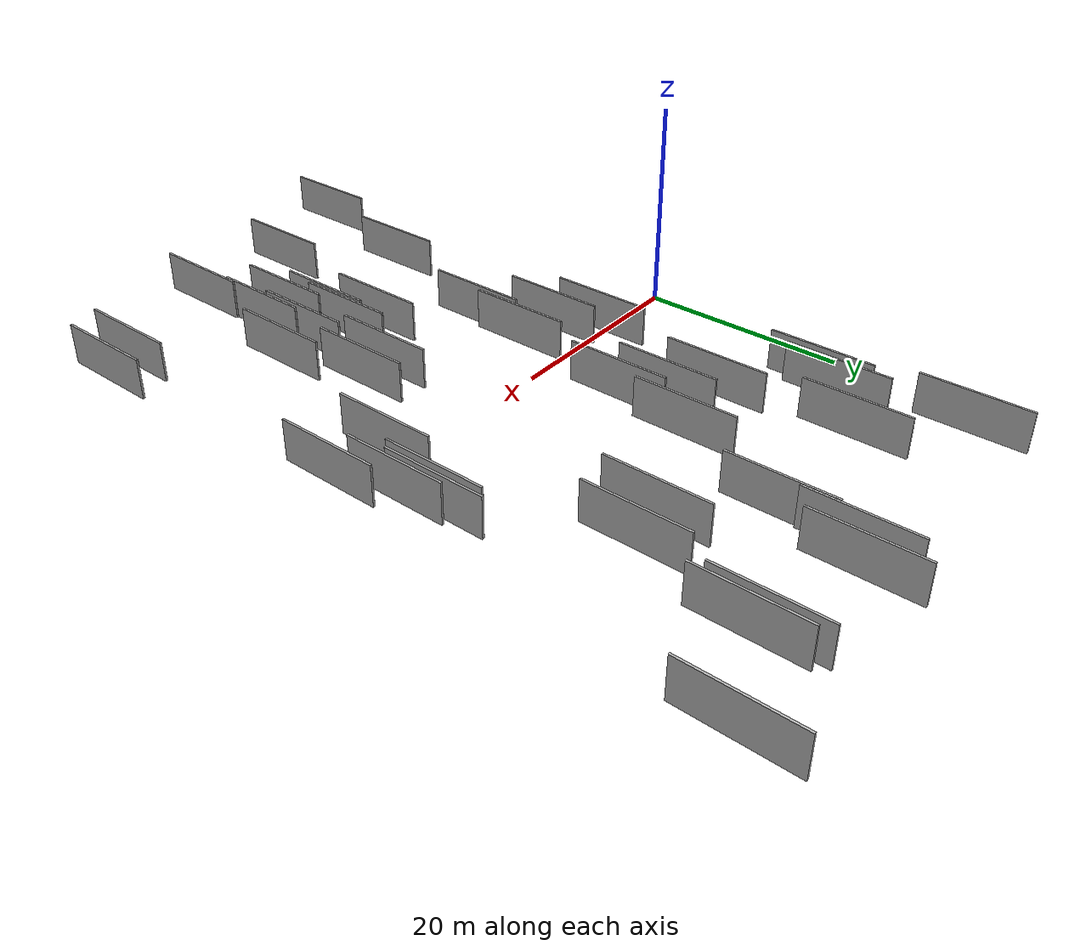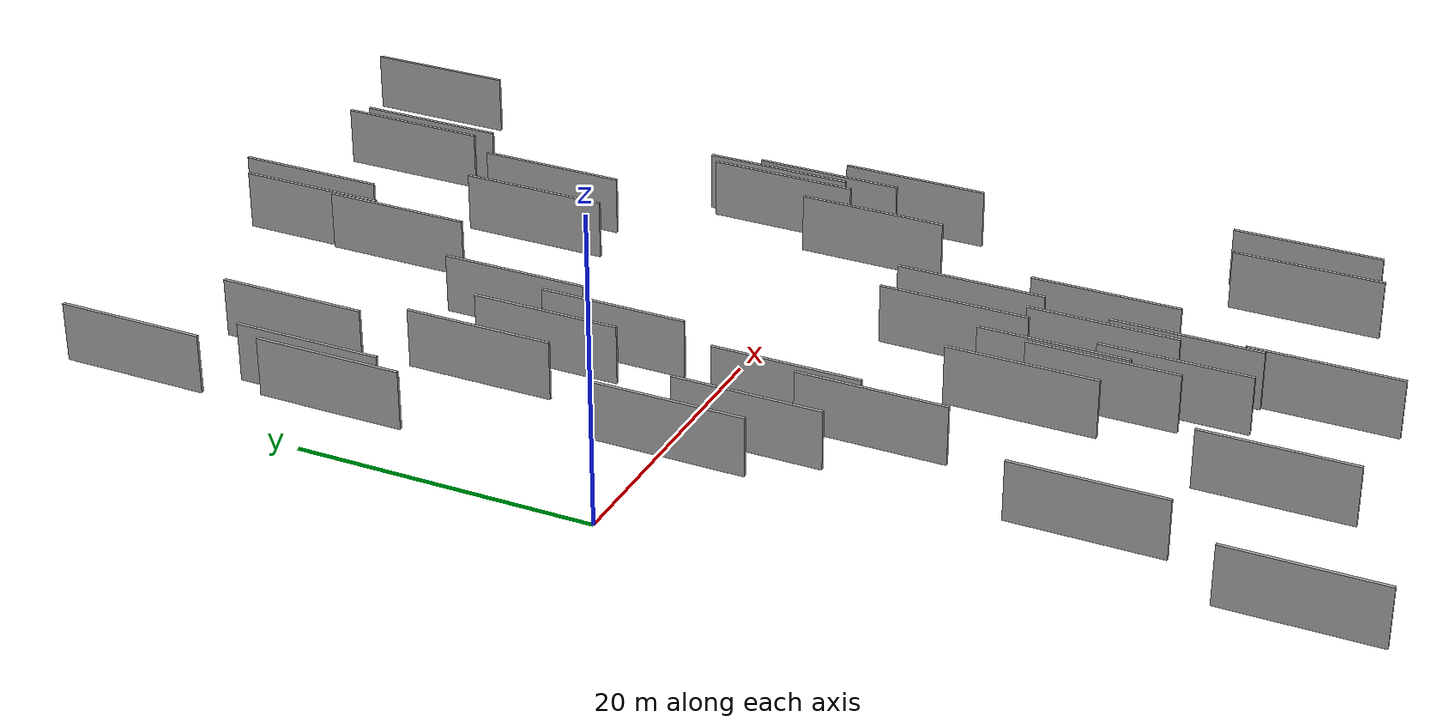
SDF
<sdf version="1.6">
 <world name="default">
  <scene>
   <sky><clouds><speed>12</speed></clouds></sky>
   <ambient>0.4 0.4 0.4 1</ambient>
   <background>0.7 0.7 0.7 1</background>
   <shadows>1</shadows>
  </scene>
  <gravity>0 0 -9.8066</gravity>
  <magnetic_field>6e-06 2.3e-05 -4.2e-05</magnetic_field>
  <physics default="0" name="default_physics" type="ode">
   <ode>
    <solver>
     <type>quick</type>
     <iters>10</iters>
     <sor>1.0</sor>
     <use_dynamic_moi_rescaling>0</use_dynamic_moi_rescaling>
    </solver>
    <constraints>
     <cfm>0</cfm>
     <erp>0.2</erp>
     <contact_max_correcting_vel>100</contact_max_correcting_vel>
     <contact_surface_layer>0.001</contact_surface_layer>
    </constraints>
   </ode>
   <max_step_size>0.004</max_step_size>
   <real_time_factor>1</real_time_factor>
   <real_time_update_rate>250</real_time_update_rate>
  </physics>
  <light name="sun" type="directional">
   <pose>0 0 10 0 0 0</pose>
   <diffuse>0.8 0.8 0.8 1</diffuse>
   <specular>0.2 0.2 0.2 1</specular>
   <attenuation>
    <range>1000</range>
    <constant>0.9</constant>
    <linear>0.01</linear>
    <quadratic>0.001</quadratic>
   </attenuation>
   <direction>-0.5 0.1 -0.9</direction>
  </light>
  <model name="grey_wall_1">
   <static>1</static>
   <pose>17.6452 7.7032 0.0 0.000000 0.000000 1.570796</pose>
   <link name="link">
    <pose>0 0 2.00 0 0 0</pose>
    <collision name="collision"><geometry><box><size>10.00 0.2 4.00</size></box></geometry></collision>
    <visual name="visual">
     <cast_shadows>0</cast_shadows>
     <geometry><box><size>10.00 0.2 4.00</size></box></geometry>
     <material>
      <script>
       <uri>model://HANNAS_wall/materials/scripts</uri>
       <uri>model://HANNAS_wall/materials/textures</uri>
       <name>vrc/HANNAS_wall</name>
      </script>
     </material>
    </visual>
   </link>
  </model>
  <model name="grey_wall_2">
   <static>1</static>
   <pose>29.3369 -34.7402 0.0 0.000000 0.000000 1.570796</pose>
   <link name="link">
    <pose>0 0 2.00 0 0 0</pose>
    <collision name="collision"><geometry><box><size>10.00 0.2 4.00</size></box></geometry></collision>
    <visual name="visual">
     <cast_shadows>0</cast_shadows>
     <geometry><box><size>10.00 0.2 4.00</size></box></geometry>
     <material>
      <script>
       <uri>model://HANNAS_wall/materials/scripts</uri>
       <uri>model://HANNAS_wall/materials/textures</uri>
       <name>vrc/HANNAS_wall</name>
      </script>
     </material>
    </visual>
   </link>
  </model>
  <model name="grey_wall_3">
   <static>1</static>
   <pose>10.5927 -26.1240 0.0 0.000000 0.000000 1.570796</pose>
   <link name="link">
    <pose>0 0 2.00 0 0 0</pose>
    <collision name="collision"><geometry><box><size>10.00 0.2 4.00</size></box></geometry></collision>
    <visual name="visual">
     <cast_shadows>0</cast_shadows>
     <geometry><box><size>10.00 0.2 4.00</size></box></geometry>
     <material>
      <script>
       <uri>model://HANNAS_wall/materials/scripts</uri>
       <uri>model://HANNAS_wall/materials/textures</uri>
       <name>vrc/HANNAS_wall</name>
      </script>
     </material>
    </visual>
   </link>
  </model>
  <model name="grey_wall_4">
   <static>1</static>
   <pose>39.8284 6.3631 0.0 0.000000 0.000000 1.570796</pose>
   <link name="link">
    <pose>0 0 2.00 0 0 0</pose>
    <collision name="collision"><geometry><box><size>10.00 0.2 4.00</size></box></geometry></collision>
    <visual name="visual">
     <cast_shadows>0</cast_shadows>
     <geometry><box><size>10.00 0.2 4.00</size></box></geometry>
     <material>
      <script>
       <uri>model://HANNAS_wall/materials/scripts</uri>
       <uri>model://HANNAS_wall/materials/textures</uri>
       <name>vrc/HANNAS_wall</name>
      </script>
     </material>
    </visual>
   </link>
  </model>
  <model name="grey_wall_5">
   <static>1</static>
   <pose>11.6787 14.0342 0.0 0.000000 0.000000 1.570796</pose>
   <link name="link">
    <pose>0 0 2.00 0 0 0</pose>
    <collision name="collision"><geometry><box><size>10.00 0.2 4.00</size></box></geometry></collision>
    <visual name="visual">
     <cast_shadows>0</cast_shadows>
     <geometry><box><size>10.00 0.2 4.00</size></box></geometry>
     <material>
      <script>
       <uri>model://HANNAS_wall/materials/scripts</uri>
       <uri>model://HANNAS_wall/materials/textures</uri>
       <name>vrc/HANNAS_wall</name>
      </script>
     </material>
    </visual>
   </link>
  </model>
  <model name="grey_wall_6">
   <static>1</static>
   <pose>7.2772 -39.6710 0.0 0.000000 0.000000 1.570796</pose>
   <link name="link">
    <pose>0 0 2.00 0 0 0</pose>
    <collision name="collision"><geometry><box><size>10.00 0.2 4.00</size></box></geometry></collision>
    <visual name="visual">
     <cast_shadows>0</cast_shadows>
     <geometry><box><size>10.00 0.2 4.00</size></box></geometry>
     <material>
      <script>
       <uri>model://HANNAS_wall/materials/scripts</uri>
       <uri>model://HANNAS_wall/materials/textures</uri>
       <name>vrc/HANNAS_wall</name>
      </script>
     </material>
    </visual>
   </link>
  </model>
  <model name="grey_wall_7">
   <static>1</static>
   <pose>27.1532 -11.4824 0.0 0.000000 0.000000 1.570796</pose>
   <link name="link">
    <pose>0 0 2.00 0 0 0</pose>
    <collision name="collision"><geometry><box><size>10.00 0.2 4.00</size></box></geometry></collision>
    <visual name="visual">
     <cast_shadows>0</cast_shadows>
     <geometry><box><size>10.00 0.2 4.00</size></box></geometry>
     <material>
      <script>
       <uri>model://HANNAS_wall/materials/scripts</uri>
       <uri>model://HANNAS_wall/materials/textures</uri>
       <name>vrc/HANNAS_wall</name>
      </script>
     </material>
    </visual>
   </link>
  </model>
  <model name="grey_wall_8">
   <static>1</static>
   <pose>21.5751 -18.0742 0.0 0.000000 0.000000 1.570796</pose>
   <link name="link">
    <pose>0 0 2.00 0 0 0</pose>
    <collision name="collision"><geometry><box><size>10.00 0.2 4.00</size></box></geometry></collision>
    <visual name="visual">
     <cast_shadows>0</cast_shadows>
     <geometry><box><size>10.00 0.2 4.00</size></box></geometry>
     <material>
      <script>
       <uri>model://HANNAS_wall/materials/scripts</uri>
       <uri>model://HANNAS_wall/materials/textures</uri>
       <name>vrc/HANNAS_wall</name>
      </script>
     </material>
    </visual>
   </link>
  </model>
  <model name="grey_wall_9">
   <static>1</static>
   <pose>24.7497 -18.9632 0.0 0.000000 0.000000 1.570796</pose>
   <link name="link">
    <pose>0 0 2.00 0 0 0</pose>
    <collision name="collision"><geometry><box><size>10.00 0.2 4.00</size></box></geometry></collision>
    <visual name="visual">
     <cast_shadows>0</cast_shadows>
     <geometry><box><size>10.00 0.2 4.00</size></box></geometry>
     <material>
      <script>
       <uri>model://HANNAS_wall/materials/scripts</uri>
       <uri>model://HANNAS_wall/materials/textures</uri>
       <name>vrc/HANNAS_wall</name>
      </script>
     </material>
    </visual>
   </link>
  </model>
  <model name="grey_wall_10">
   <static>1</static>
   <pose>3.2504 34.0008 0.0 0.000000 0.000000 1.570796</pose>
   <link name="link">
    <pose>0 0 2.00 0 0 0</pose>
    <collision name="collision"><geometry><box><size>10.00 0.2 4.00</size></box></geometry></collision>
    <visual name="visual">
     <cast_shadows>0</cast_shadows>
     <geometry><box><size>10.00 0.2 4.00</size></box></geometry>
     <material>
      <script>
       <uri>model://HANNAS_wall/materials/scripts</uri>
       <uri>model://HANNAS_wall/materials/textures</uri>
       <name>vrc/HANNAS_wall</name>
      </script>
     </material>
    </visual>
   </link>
  </model>
  <model name="grey_wall_11">
   <static>1</static>
   <pose>24.2632 -22.3150 0.0 0.000000 0.000000 1.570796</pose>
   <link name="link">
    <pose>0 0 2.00 0 0 0</pose>
    <collision name="collision"><geometry><box><size>10.00 0.2 4.00</size></box></geometry></collision>
    <visual name="visual">
     <cast_shadows>0</cast_shadows>
     <geometry><box><size>10.00 0.2 4.00</size></box></geometry>
     <material>
      <script>
       <uri>model://HANNAS_wall/materials/scripts</uri>
       <uri>model://HANNAS_wall/materials/textures</uri>
       <name>vrc/HANNAS_wall</name>
      </script>
     </material>
    </visual>
   </link>
  </model>
  <model name="grey_wall_12">
   <static>1</static>
   <pose>41.0573 -30.3732 0.0 0.000000 0.000000 1.570796</pose>
   <link name="link">
    <pose>0 0 2.00 0 0 0</pose>
    <collision name="collision"><geometry><box><size>10.00 0.2 4.00</size></box></geometry></collision>
    <visual name="visual">
     <cast_shadows>0</cast_shadows>
     <geometry><box><size>10.00 0.2 4.00</size></box></geometry>
     <material>
      <script>
       <uri>model://HANNAS_wall/materials/scripts</uri>
       <uri>model://HANNAS_wall/materials/textures</uri>
       <name>vrc/HANNAS_wall</name>
      </script>
     </material>
    </visual>
   </link>
  </model>
  <model name="grey_wall_13">
   <static>1</static>
   <pose>25.8757 -26.3739 0.0 0.000000 0.000000 1.570796</pose>
   <link name="link">
    <pose>0 0 2.00 0 0 0</pose>
    <collision name="collision"><geometry><box><size>10.00 0.2 4.00</size></box></geometry></collision>
    <visual name="visual">
     <cast_shadows>0</cast_shadows>
     <geometry><box><size>10.00 0.2 4.00</size></box></geometry>
     <material>
      <script>
       <uri>model://HANNAS_wall/materials/scripts</uri>
       <uri>model://HANNAS_wall/materials/textures</uri>
       <name>vrc/HANNAS_wall</name>
      </script>
     </material>
    </visual>
   </link>
  </model>
  <model name="grey_wall_14">
   <static>1</static>
   <pose>44.5203 35.6101 0.0 0.000000 0.000000 1.570796</pose>
   <link name="link">
    <pose>0 0 2.00 0 0 0</pose>
    <collision name="collision"><geometry><box><size>10.00 0.2 4.00</size></box></geometry></collision>
    <visual name="visual">
     <cast_shadows>0</cast_shadows>
     <geometry><box><size>10.00 0.2 4.00</size></box></geometry>
     <material>
      <script>
       <uri>model://HANNAS_wall/materials/scripts</uri>
       <uri>model://HANNAS_wall/materials/textures</uri>
       <name>vrc/HANNAS_wall</name>
      </script>
     </material>
    </visual>
   </link>
  </model>
  <model name="grey_wall_15">
   <static>1</static>
   <pose>33.5682 20.5417 0.0 0.000000 0.000000 1.570796</pose>
   <link name="link">
    <pose>0 0 2.00 0 0 0</pose>
    <collision name="collision"><geometry><box><size>10.00 0.2 4.00</size></box></geometry></collision>
    <visual name="visual">
     <cast_shadows>0</cast_shadows>
     <geometry><box><size>10.00 0.2 4.00</size></box></geometry>
     <material>
      <script>
       <uri>model://HANNAS_wall/materials/scripts</uri>
       <uri>model://HANNAS_wall/materials/textures</uri>
       <name>vrc/HANNAS_wall</name>
      </script>
     </material>
    </visual>
   </link>
  </model>
  <model name="grey_wall_16">
   <static>1</static>
   <pose>23.6345 26.9207 0.0 0.000000 0.000000 1.570796</pose>
   <link name="link">
    <pose>0 0 2.00 0 0 0</pose>
    <collision name="collision"><geometry><box><size>10.00 0.2 4.00</size></box></geometry></collision>
    <visual name="visual">
     <cast_shadows>0</cast_shadows>
     <geometry><box><size>10.00 0.2 4.00</size></box></geometry>
     <material>
      <script>
       <uri>model://HANNAS_wall/materials/scripts</uri>
       <uri>model://HANNAS_wall/materials/textures</uri>
       <name>vrc/HANNAS_wall</name>
      </script>
     </material>
    </visual>
   </link>
  </model>
  <model name="grey_wall_17">
   <static>1</static>
   <pose>38.9944 5.6260 0.0 0.000000 0.000000 1.570796</pose>
   <link name="link">
    <pose>0 0 2.00 0 0 0</pose>
    <collision name="collision"><geometry><box><size>10.00 0.2 4.00</size></box></geometry></collision>
    <visual name="visual">
     <cast_shadows>0</cast_shadows>
     <geometry><box><size>10.00 0.2 4.00</size></box></geometry>
     <material>
      <script>
       <uri>model://HANNAS_wall/materials/scripts</uri>
       <uri>model://HANNAS_wall/materials/textures</uri>
       <name>vrc/HANNAS_wall</name>
      </script>
     </material>
    </visual>
   </link>
  </model>
  <model name="grey_wall_18">
   <static>1</static>
   <pose>36.6726 -1.9402 0.0 0.000000 0.000000 1.570796</pose>
   <link name="link">
    <pose>0 0 2.00 0 0 0</pose>
    <collision name="collision"><geometry><box><size>10.00 0.2 4.00</size></box></geometry></collision>
    <visual name="visual">
     <cast_shadows>0</cast_shadows>
     <geometry><box><size>10.00 0.2 4.00</size></box></geometry>
     <material>
      <script>
       <uri>model://HANNAS_wall/materials/scripts</uri>
       <uri>model://HANNAS_wall/materials/textures</uri>
       <name>vrc/HANNAS_wall</name>
      </script>
     </material>
    </visual>
   </link>
  </model>
  <model name="grey_wall_19">
   <static>1</static>
   <pose>36.4396 31.6796 0.0 0.000000 0.000000 1.570796</pose>
   <link name="link">
    <pose>0 0 2.00 0 0 0</pose>
    <collision name="collision"><geometry><box><size>10.00 0.2 4.00</size></box></geometry></collision>
    <visual name="visual">
     <cast_shadows>0</cast_shadows>
     <geometry><box><size>10.00 0.2 4.00</size></box></geometry>
     <material>
      <script>
       <uri>model://HANNAS_wall/materials/scripts</uri>
       <uri>model://HANNAS_wall/materials/textures</uri>
       <name>vrc/HANNAS_wall</name>
      </script>
     </material>
    </visual>
   </link>
  </model>
  <model name="grey_wall_20">
   <static>1</static>
   <pose>44.1261 -29.4959 0.0 0.000000 0.000000 1.570796</pose>
   <link name="link">
    <pose>0 0 2.00 0 0 0</pose>
    <collision name="collision"><geometry><box><size>10.00 0.2 4.00</size></box></geometry></collision>
    <visual name="visual">
     <cast_shadows>0</cast_shadows>
     <geometry><box><size>10.00 0.2 4.00</size></box></geometry>
     <material>
      <script>
       <uri>model://HANNAS_wall/materials/scripts</uri>
       <uri>model://HANNAS_wall/materials/textures</uri>
       <name>vrc/HANNAS_wall</name>
      </script>
     </material>
    </visual>
   </link>
  </model>
  <model name="grey_wall_21">
   <static>1</static>
   <pose>29.9358 19.9670 0.0 0.000000 0.000000 1.570796</pose>
   <link name="link">
    <pose>0 0 2.00 0 0 0</pose>
    <collision name="collision"><geometry><box><size>10.00 0.2 4.00</size></box></geometry></collision>
    <visual name="visual">
     <cast_shadows>0</cast_shadows>
     <geometry><box><size>10.00 0.2 4.00</size></box></geometry>
     <material>
      <script>
       <uri>model://HANNAS_wall/materials/scripts</uri>
       <uri>model://HANNAS_wall/materials/textures</uri>
       <name>vrc/HANNAS_wall</name>
      </script>
     </material>
    </visual>
   </link>
  </model>
  <model name="grey_wall_22">
   <static>1</static>
   <pose>11.2078 -4.4995 0.0 0.000000 0.000000 1.570796</pose>
   <link name="link">
    <pose>0 0 2.00 0 0 0</pose>
    <collision name="collision"><geometry><box><size>10.00 0.2 4.00</size></box></geometry></collision>
    <visual name="visual">
     <cast_shadows>0</cast_shadows>
     <geometry><box><size>10.00 0.2 4.00</size></box></geometry>
     <material>
      <script>
       <uri>model://HANNAS_wall/materials/scripts</uri>
       <uri>model://HANNAS_wall/materials/textures</uri>
       <name>vrc/HANNAS_wall</name>
      </script>
     </material>
    </visual>
   </link>
  </model>
  <model name="grey_wall_23">
   <static>1</static>
   <pose>15.5559 -5.1183 0.0 0.000000 0.000000 1.570796</pose>
   <link name="link">
    <pose>0 0 2.00 0 0 0</pose>
    <collision name="collision"><geometry><box><size>10.00 0.2 4.00</size></box></geometry></collision>
    <visual name="visual">
     <cast_shadows>0</cast_shadows>
     <geometry><box><size>10.00 0.2 4.00</size></box></geometry>
     <material>
      <script>
       <uri>model://HANNAS_wall/materials/scripts</uri>
       <uri>model://HANNAS_wall/materials/textures</uri>
       <name>vrc/HANNAS_wall</name>
      </script>
     </material>
    </visual>
   </link>
  </model>
  <model name="grey_wall_24">
   <static>1</static>
   <pose>32.2377 -19.7604 0.0 0.000000 0.000000 1.570796</pose>
   <link name="link">
    <pose>0 0 2.00 0 0 0</pose>
    <collision name="collision"><geometry><box><size>10.00 0.2 4.00</size></box></geometry></collision>
    <visual name="visual">
     <cast_shadows>0</cast_shadows>
     <geometry><box><size>10.00 0.2 4.00</size></box></geometry>
     <material>
      <script>
       <uri>model://HANNAS_wall/materials/scripts</uri>
       <uri>model://HANNAS_wall/materials/textures</uri>
       <name>vrc/HANNAS_wall</name>
      </script>
     </material>
    </visual>
   </link>
  </model>
  <model name="grey_wall_25">
   <static>1</static>
   <pose>40.5021 2.8963 0.0 0.000000 0.000000 1.570796</pose>
   <link name="link">
    <pose>0 0 2.00 0 0 0</pose>
    <collision name="collision"><geometry><box><size>10.00 0.2 4.00</size></box></geometry></collision>
    <visual name="visual">
     <cast_shadows>0</cast_shadows>
     <geometry><box><size>10.00 0.2 4.00</size></box></geometry>
     <material>
      <script>
       <uri>model://HANNAS_wall/materials/scripts</uri>
       <uri>model://HANNAS_wall/materials/textures</uri>
       <name>vrc/HANNAS_wall</name>
      </script>
     </material>
    </visual>
   </link>
  </model>
  <model name="grey_wall_26">
   <static>1</static>
   <pose>42.2327 -2.7268 0.0 0.000000 0.000000 1.570796</pose>
   <link name="link">
    <pose>0 0 2.00 0 0 0</pose>
    <collision name="collision"><geometry><box><size>10.00 0.2 4.00</size></box></geometry></collision>
    <visual name="visual">
     <cast_shadows>0</cast_shadows>
     <geometry><box><size>10.00 0.2 4.00</size></box></geometry>
     <material>
      <script>
       <uri>model://HANNAS_wall/materials/scripts</uri>
       <uri>model://HANNAS_wall/materials/textures</uri>
       <name>vrc/HANNAS_wall</name>
      </script>
     </material>
    </visual>
   </link>
  </model>
  <model name="grey_wall_27">
   <static>1</static>
   <pose>19.0448 15.4791 0.0 0.000000 0.000000 1.570796</pose>
   <link name="link">
    <pose>0 0 2.00 0 0 0</pose>
    <collision name="collision"><geometry><box><size>10.00 0.2 4.00</size></box></geometry></collision>
    <visual name="visual">
     <cast_shadows>0</cast_shadows>
     <geometry><box><size>10.00 0.2 4.00</size></box></geometry>
     <material>
      <script>
       <uri>model://HANNAS_wall/materials/scripts</uri>
       <uri>model://HANNAS_wall/materials/textures</uri>
       <name>vrc/HANNAS_wall</name>
      </script>
     </material>
    </visual>
   </link>
  </model>
  <model name="grey_wall_28">
   <static>1</static>
   <pose>35.5474 32.6762 0.0 0.000000 0.000000 1.570796</pose>
   <link name="link">
    <pose>0 0 2.00 0 0 0</pose>
    <collision name="collision"><geometry><box><size>10.00 0.2 4.00</size></box></geometry></collision>
    <visual name="visual">
     <cast_shadows>0</cast_shadows>
     <geometry><box><size>10.00 0.2 4.00</size></box></geometry>
     <material>
      <script>
       <uri>model://HANNAS_wall/materials/scripts</uri>
       <uri>model://HANNAS_wall/materials/textures</uri>
       <name>vrc/HANNAS_wall</name>
      </script>
     </material>
    </visual>
   </link>
  </model>
  <model name="grey_wall_29">
   <static>1</static>
   <pose>5.6789 22.6766 0.0 0.000000 0.000000 1.570796</pose>
   <link name="link">
    <pose>0 0 2.00 0 0 0</pose>
    <collision name="collision"><geometry><box><size>10.00 0.2 4.00</size></box></geometry></collision>
    <visual name="visual">
     <cast_shadows>0</cast_shadows>
     <geometry><box><size>10.00 0.2 4.00</size></box></geometry>
     <material>
      <script>
       <uri>model://HANNAS_wall/materials/scripts</uri>
       <uri>model://HANNAS_wall/materials/textures</uri>
       <name>vrc/HANNAS_wall</name>
      </script>
     </material>
    </visual>
   </link>
  </model>
  <model name="grey_wall_30">
   <static>1</static>
   <pose>10.2184 26.6279 0.0 0.000000 0.000000 1.570796</pose>
   <link name="link">
    <pose>0 0 2.00 0 0 0</pose>
    <collision name="collision"><geometry><box><size>10.00 0.2 4.00</size></box></geometry></collision>
    <visual name="visual">
     <cast_shadows>0</cast_shadows>
     <geometry><box><size>10.00 0.2 4.00</size></box></geometry>
     <material>
      <script>
       <uri>model://HANNAS_wall/materials/scripts</uri>
       <uri>model://HANNAS_wall/materials/textures</uri>
       <name>vrc/HANNAS_wall</name>
      </script>
     </material>
    </visual>
   </link>
  </model>
  <model name="grey_wall_31">
   <static>1</static>
   <pose>8.5668 -0.6362 0.0 0.000000 0.000000 1.570796</pose>
   <link name="link">
    <pose>0 0 2.00 0 0 0</pose>
    <collision name="collision"><geometry><box><size>10.00 0.2 4.00</size></box></geometry></collision>
    <visual name="visual">
     <cast_shadows>0</cast_shadows>
     <geometry><box><size>10.00 0.2 4.00</size></box></geometry>
     <material>
      <script>
       <uri>model://HANNAS_wall/materials/scripts</uri>
       <uri>model://HANNAS_wall/materials/textures</uri>
       <name>vrc/HANNAS_wall</name>
      </script>
     </material>
    </visual>
   </link>
  </model>
  <model name="grey_wall_32">
   <static>1</static>
   <pose>14.8521 -11.0126 0.0 0.000000 0.000000 1.570796</pose>
   <link name="link">
    <pose>0 0 2.00 0 0 0</pose>
    <collision name="collision"><geometry><box><size>10.00 0.2 4.00</size></box></geometry></collision>
    <visual name="visual">
     <cast_shadows>0</cast_shadows>
     <geometry><box><size>10.00 0.2 4.00</size></box></geometry>
     <material>
      <script>
       <uri>model://HANNAS_wall/materials/scripts</uri>
       <uri>model://HANNAS_wall/materials/textures</uri>
       <name>vrc/HANNAS_wall</name>
      </script>
     </material>
    </visual>
   </link>
  </model>
  <model name="grey_wall_33">
   <static>1</static>
   <pose>25.9767 35.0566 0.0 0.000000 0.000000 1.570796</pose>
   <link name="link">
    <pose>0 0 2.00 0 0 0</pose>
    <collision name="collision"><geometry><box><size>10.00 0.2 4.00</size></box></geometry></collision>
    <visual name="visual">
     <cast_shadows>0</cast_shadows>
     <geometry><box><size>10.00 0.2 4.00</size></box></geometry>
     <material>
      <script>
       <uri>model://HANNAS_wall/materials/scripts</uri>
       <uri>model://HANNAS_wall/materials/textures</uri>
       <name>vrc/HANNAS_wall</name>
      </script>
     </material>
    </visual>
   </link>
  </model>
  <model name="grey_wall_34">
   <static>1</static>
   <pose>15.1824 11.1846 0.0 0.000000 0.000000 1.570796</pose>
   <link name="link">
    <pose>0 0 2.00 0 0 0</pose>
    <collision name="collision"><geometry><box><size>10.00 0.2 4.00</size></box></geometry></collision>
    <visual name="visual">
     <cast_shadows>0</cast_shadows>
     <geometry><box><size>10.00 0.2 4.00</size></box></geometry>
     <material>
      <script>
       <uri>model://HANNAS_wall/materials/scripts</uri>
       <uri>model://HANNAS_wall/materials/textures</uri>
       <name>vrc/HANNAS_wall</name>
      </script>
     </material>
    </visual>
   </link>
  </model>
  <model name="grey_wall_35">
   <static>1</static>
   <pose>4.6229 20.5758 0.0 0.000000 0.000000 1.570796</pose>
   <link name="link">
    <pose>0 0 2.00 0 0 0</pose>
    <collision name="collision"><geometry><box><size>10.00 0.2 4.00</size></box></geometry></collision>
    <visual name="visual">
     <cast_shadows>0</cast_shadows>
     <geometry><box><size>10.00 0.2 4.00</size></box></geometry>
     <material>
      <script>
       <uri>model://HANNAS_wall/materials/scripts</uri>
       <uri>model://HANNAS_wall/materials/textures</uri>
       <name>vrc/HANNAS_wall</name>
      </script>
     </material>
    </visual>
   </link>
  </model>
  <model name="grey_wall_36">
   <static>1</static>
   <pose>28.4576 -20.8748 0.0 0.000000 0.000000 1.570796</pose>
   <link name="link">
    <pose>0 0 2.00 0 0 0</pose>
    <collision name="collision"><geometry><box><size>10.00 0.2 4.00</size></box></geometry></collision>
    <visual name="visual">
     <cast_shadows>0</cast_shadows>
     <geometry><box><size>10.00 0.2 4.00</size></box></geometry>
     <material>
      <script>
       <uri>model://HANNAS_wall/materials/scripts</uri>
       <uri>model://HANNAS_wall/materials/textures</uri>
       <name>vrc/HANNAS_wall</name>
      </script>
     </material>
    </visual>
   </link>
  </model>
  <model name="grey_wall_37">
   <static>1</static>
   <pose>23.8901 33.6496 0.0 0.000000 0.000000 1.570796</pose>
   <link name="link">
    <pose>0 0 2.00 0 0 0</pose>
    <collision name="collision"><geometry><box><size>10.00 0.2 4.00</size></box></geometry></collision>
    <visual name="visual">
     <cast_shadows>0</cast_shadows>
     <geometry><box><size>10.00 0.2 4.00</size></box></geometry>
     <material>
      <script>
       <uri>model://HANNAS_wall/materials/scripts</uri>
       <uri>model://HANNAS_wall/materials/textures</uri>
       <name>vrc/HANNAS_wall</name>
      </script>
     </material>
    </visual>
   </link>
  </model>
  <model name="grey_wall_38">
   <static>1</static>
   <pose>18.5889 -34.9168 0.0 0.000000 0.000000 1.570796</pose>
   <link name="link">
    <pose>0 0 2.00 0 0 0</pose>
    <collision name="collision"><geometry><box><size>10.00 0.2 4.00</size></box></geometry></collision>
    <visual name="visual">
     <cast_shadows>0</cast_shadows>
     <geometry><box><size>10.00 0.2 4.00</size></box></geometry>
     <material>
      <script>
       <uri>model://HANNAS_wall/materials/scripts</uri>
       <uri>model://HANNAS_wall/materials/textures</uri>
       <name>vrc/HANNAS_wall</name>
      </script>
     </material>
    </visual>
   </link>
  </model>
  <model name="grey_wall_39">
   <static>1</static>
   <pose>29.0801 -26.0718 0.0 0.000000 0.000000 1.570796</pose>
   <link name="link">
    <pose>0 0 2.00 0 0 0</pose>
    <collision name="collision"><geometry><box><size>10.00 0.2 4.00</size></box></geometry></collision>
    <visual name="visual">
     <cast_shadows>0</cast_shadows>
     <geometry><box><size>10.00 0.2 4.00</size></box></geometry>
     <material>
      <script>
       <uri>model://HANNAS_wall/materials/scripts</uri>
       <uri>model://HANNAS_wall/materials/textures</uri>
       <name>vrc/HANNAS_wall</name>
      </script>
     </material>
    </visual>
   </link>
  </model>
  <model name="grey_wall_40">
   <static>1</static>
   <pose>30.1443 -11.4546 0.0 0.000000 0.000000 1.570796</pose>
   <link name="link">
    <pose>0 0 2.00 0 0 0</pose>
    <collision name="collision"><geometry><box><size>10.00 0.2 4.00</size></box></geometry></collision>
    <visual name="visual">
     <cast_shadows>0</cast_shadows>
     <geometry><box><size>10.00 0.2 4.00</size></box></geometry>
     <material>
      <script>
       <uri>model://HANNAS_wall/materials/scripts</uri>
       <uri>model://HANNAS_wall/materials/textures</uri>
       <name>vrc/HANNAS_wall</name>
      </script>
     </material>
    </visual>
   </link>
  </model>
 </world>
</sdf>
